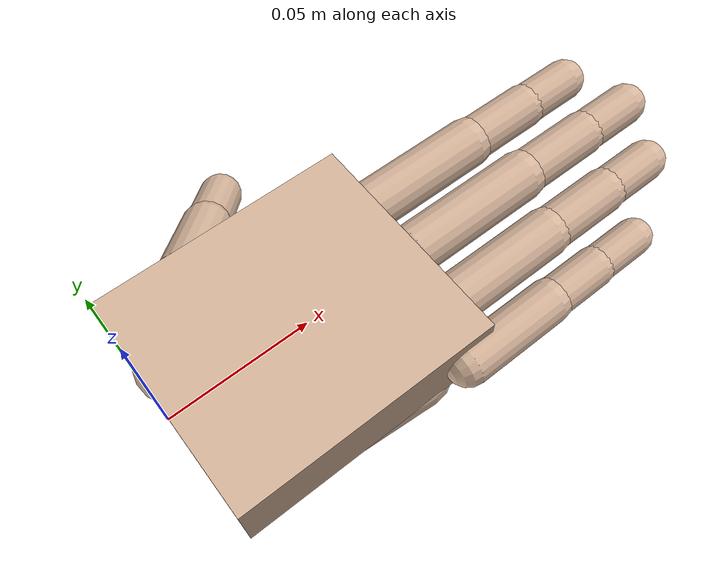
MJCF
<mujoco model="dexterous_hand">
  <compiler angle="radian" autolimits="true"/>

  <default>
    <default class="hand">
      <joint type="hinge" axis="0 1 0" damping="0.02" armature="0.0005"/>
      <geom type="capsule" density="1000" friction="1.3 0.01 0.0005" condim="6" rgba="0.85 0.72 0.62 1"/>
      <position kp="10" kv="0.2" ctrlrange="0 1.4" forcerange="-2 2"/>
    </default>
  </default>

  <worldbody>
    <body name="hand_root" childclass="hand" gravcomp="1">
      <freejoint name="hand_free"/>
      <geom name="palm" type="box" pos="0.045 0 0" size="0.045 0.04 0.012" mass="0.4"/>
      <geom name="thenar" fromto="0.012 0.022 -0.016 0.05 0.02 -0.02" size="0.014" mass="0.02"/>
      <geom name="hypothenar" fromto="0.012 -0.026 -0.014 0.07 -0.03 -0.015" size="0.011" mass="0.02"/>

      <body name="index_proximal" pos="0.09 0.022 0" gravcomp="1">
        <joint name="index_mcp" range="0 1.57"/>
        <geom name="index_proximal" fromto="0 0 0 0.045 0 0" size="0.009"/>
        <body name="index_middle" pos="0.045 0 0" gravcomp="1">
          <joint name="index_pip" range="0 1.75"/>
          <geom name="index_middle" fromto="0 0 0 0.027 0 0" size="0.008"/>
          <body name="index_distal" pos="0.027 0 0" gravcomp="1">
            <joint name="index_dip" range="0 1.4"/>
            <geom name="index_distal" fromto="0 0 0 0.02 0 0" size="0.0075"/>
            <site name="index_tip" pos="0.02 0 -0.004" size="0.004" rgba="1 0 0 0.5"/>
          </body>
        </body>
      </body>

      <body name="middle_proximal" pos="0.092 0 0" gravcomp="1">
        <joint name="middle_mcp" range="0 1.57"/>
        <geom name="middle_proximal" fromto="0 0 0 0.048 0 0" size="0.009"/>
        <body name="middle_middle" pos="0.048 0 0" gravcomp="1">
          <joint name="middle_pip" range="0 1.75"/>
          <geom name="middle_middle" fromto="0 0 0 0.03 0 0" size="0.008"/>
          <body name="middle_distal" pos="0.03 0 0" gravcomp="1">
            <joint name="middle_dip" range="0 1.4"/>
            <geom name="middle_distal" fromto="0 0 0 0.021 0 0" size="0.0075"/>
            <site name="middle_tip" pos="0.021 0 -0.004" size="0.004" rgba="1 0 0 0.5"/>
          </body>
        </body>
      </body>

      <body name="thumb_proximal" pos="0.03 0.045 -0.012" quat="0.6217 -0.6151 -0.0510 0.4822" gravcomp="1">
        <joint name="thumb_mcp" range="0 1.2"/>
        <geom name="thumb_proximal" fromto="0 0 0 0.04 0 0" size="0.0095"/>
        <body name="thumb_distal" pos="0.04 0 0" gravcomp="1">
          <joint name="thumb_ip" range="0 1.3"/>
          <geom name="thumb_distal" fromto="0 0 0 0.03 0 0" size="0.0085"/>
          <site name="thumb_tip" pos="0.03 0 -0.004" size="0.004" rgba="1 0 0 0.5"/>
        </body>
      </body>

      <body name="ring_proximal" pos="0.088 -0.022 0" gravcomp="1">
        <joint name="ring_mcp" range="0 1.57"/>
        <geom name="ring_proximal" fromto="0 0 0 0.043 0 0" size="0.0085"/>
        <body name="ring_middle" pos="0.043 0 0" gravcomp="1">
          <joint name="ring_pip" range="0 1.75"/>
          <geom name="ring_middle" fromto="0 0 0 0.027 0 0" size="0.0078"/>
          <body name="ring_distal" pos="0.027 0 0" gravcomp="1">
            <joint name="ring_dip" range="0 1.4"/>
            <geom name="ring_distal" fromto="0 0 0 0.02 0 0" size="0.0072"/>
          </body>
        </body>
      </body>

      <body name="pinky_proximal" pos="0.08 -0.041 0" gravcomp="1">
        <joint name="pinky_mcp" range="0 1.57"/>
        <geom name="pinky_proximal" fromto="0 0 0 0.034 0 0" size="0.0075"/>
        <body name="pinky_middle" pos="0.034 0 0" gravcomp="1">
          <joint name="pinky_pip" range="0 1.75"/>
          <geom name="pinky_middle" fromto="0 0 0 0.02 0 0" size="0.0068"/>
          <body name="pinky_distal" pos="0.02 0 0" gravcomp="1">
            <joint name="pinky_dip" range="0 1.4"/>
            <geom name="pinky_distal" fromto="0 0 0 0.018 0 0" size="0.0063"/>
          </body>
        </body>
      </body>
    </body>
  </worldbody>

  <contact>
    <exclude body1="thumb_proximal" body2="index_proximal"/>
    <exclude body1="thumb_proximal" body2="index_middle"/>
    <exclude body1="thumb_proximal" body2="index_distal"/>
    <exclude body1="thumb_proximal" body2="middle_proximal"/>
    <exclude body1="thumb_proximal" body2="middle_middle"/>
    <exclude body1="thumb_proximal" body2="middle_distal"/>
    <exclude body1="thumb_proximal" body2="ring_proximal"/>
    <exclude body1="thumb_proximal" body2="ring_middle"/>
    <exclude body1="thumb_proximal" body2="ring_distal"/>
    <exclude body1="thumb_proximal" body2="pinky_proximal"/>
    <exclude body1="thumb_proximal" body2="pinky_middle"/>
    <exclude body1="thumb_proximal" body2="pinky_distal"/>
    <exclude body1="thumb_distal" body2="index_proximal"/>
    <exclude body1="thumb_distal" body2="index_middle"/>
    <exclude body1="thumb_distal" body2="index_distal"/>
    <exclude body1="thumb_distal" body2="middle_proximal"/>
    <exclude body1="thumb_distal" body2="middle_middle"/>
    <exclude body1="thumb_distal" body2="middle_distal"/>
    <exclude body1="thumb_distal" body2="ring_proximal"/>
    <exclude body1="thumb_distal" body2="ring_middle"/>
    <exclude body1="thumb_distal" body2="ring_distal"/>
    <exclude body1="thumb_distal" body2="pinky_proximal"/>
    <exclude body1="thumb_distal" body2="pinky_middle"/>
    <exclude body1="thumb_distal" body2="pinky_distal"/>
    <exclude body1="hand_root" body2="index_middle"/>
    <exclude body1="hand_root" body2="index_distal"/>
    <exclude body1="hand_root" body2="middle_middle"/>
    <exclude body1="hand_root" body2="middle_distal"/>
    <exclude body1="hand_root" body2="ring_middle"/>
    <exclude body1="hand_root" body2="ring_distal"/>
    <exclude body1="hand_root" body2="pinky_middle"/>
    <exclude body1="hand_root" body2="pinky_distal"/>
    <exclude body1="hand_root" body2="thumb_distal"/>
    <exclude body1="hand_root" body2="index_proximal"/>
    <exclude body1="hand_root" body2="middle_proximal"/>
    <exclude body1="hand_root" body2="thumb_proximal"/>
    <exclude body1="hand_root" body2="ring_proximal"/>
    <exclude body1="hand_root" body2="pinky_proximal"/>
    <exclude body1="index_proximal" body2="middle_proximal"/>
    <exclude body1="index_middle" body2="middle_middle"/>
    <exclude body1="index_distal" body2="middle_distal"/>
    <exclude body1="middle_proximal" body2="ring_proximal"/>
    <exclude body1="middle_middle" body2="ring_middle"/>
    <exclude body1="middle_distal" body2="ring_distal"/>
    <exclude body1="ring_proximal" body2="pinky_proximal"/>
    <exclude body1="ring_middle" body2="pinky_middle"/>
    <exclude body1="ring_distal" body2="pinky_distal"/>
  </contact>

  <equality>
    <joint joint1="index_pip" joint2="index_mcp" polycoef="0 1.1 0 0 0"/>
    <joint joint1="index_dip" joint2="index_pip" polycoef="0 0.7 0 0 0"/>
    <joint joint1="middle_pip" joint2="middle_mcp" polycoef="0 1.1 0 0 0"/>
    <joint joint1="middle_dip" joint2="middle_pip" polycoef="0 0.7 0 0 0"/>
    <joint joint1="ring_mcp" joint2="middle_mcp" polycoef="0 1 0 0 0"/>
    <joint joint1="ring_pip" joint2="ring_mcp" polycoef="0 1.1 0 0 0"/>
    <joint joint1="ring_dip" joint2="ring_pip" polycoef="0 0.7 0 0 0"/>
    <joint joint1="pinky_mcp" joint2="middle_mcp" polycoef="0 1 0 0 0"/>
    <joint joint1="pinky_pip" joint2="pinky_mcp" polycoef="0 1.1 0 0 0"/>
    <joint joint1="pinky_dip" joint2="pinky_pip" polycoef="0 0.7 0 0 0"/>
    <joint joint1="thumb_ip" joint2="thumb_mcp" polycoef="0 1.0 0 0 0"/>
  </equality>

  <actuator>
    <position name="thumb" class="hand" joint="thumb_mcp" ctrlrange="0 1.2"/>
    <position name="index" class="hand" joint="index_mcp"/>
    <position name="middle" class="hand" joint="middle_mcp"/>
  </actuator>
</mujoco>
